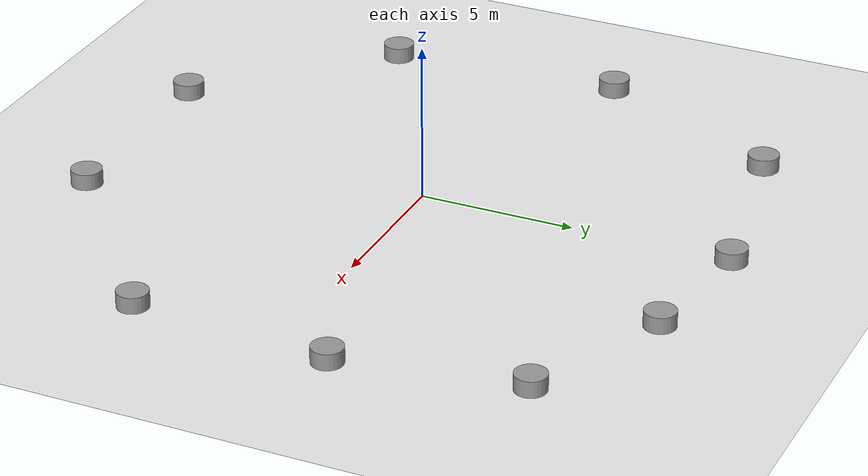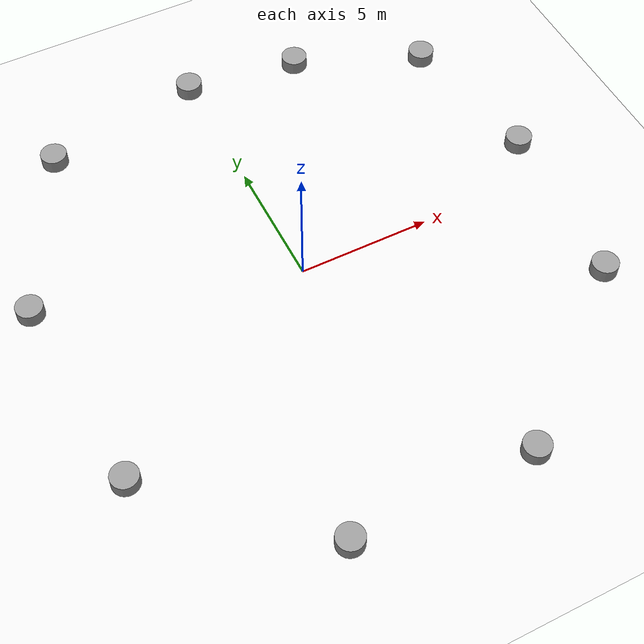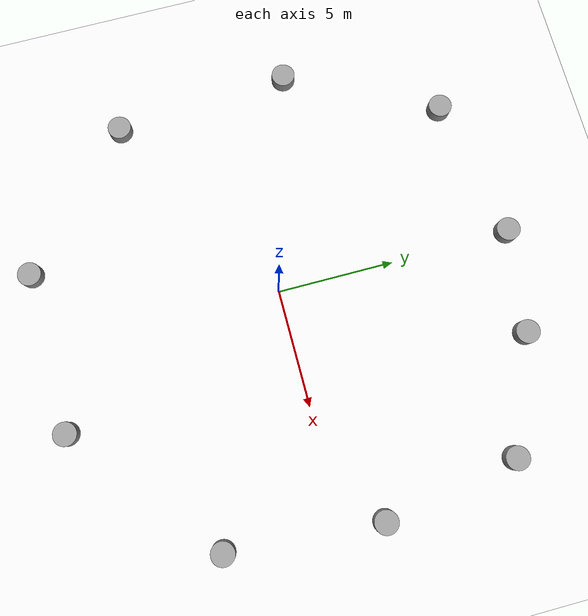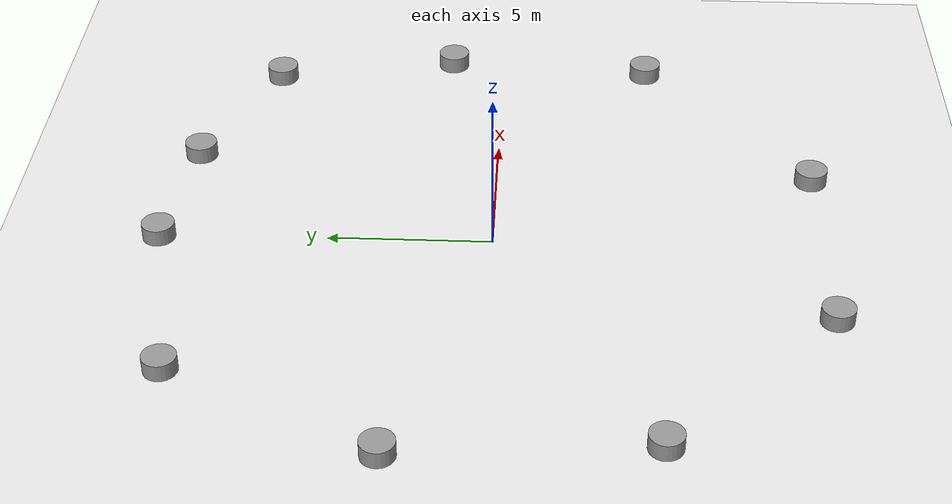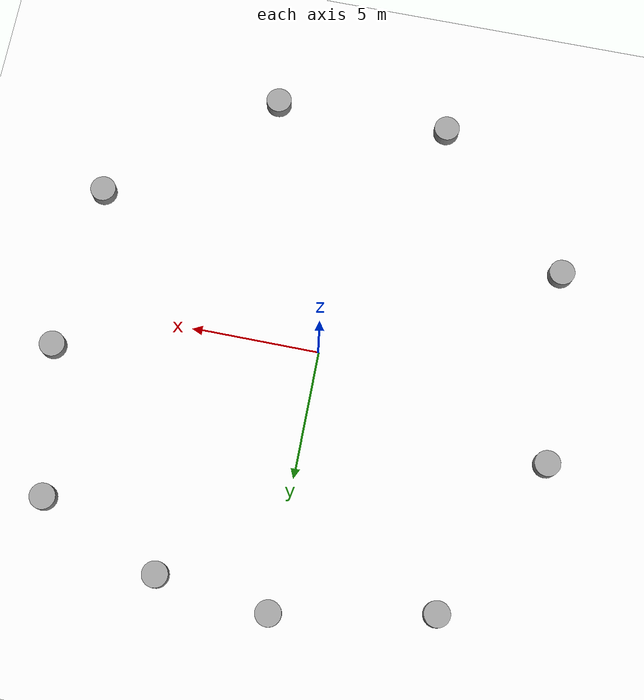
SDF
<sdf version="1.7">
 <world name="default">
  <light name="sun" type="directional">
   <pose>0 0 10 0 -0 0</pose>
   <diffuse>0.8 0.8 0.8 1</diffuse>
   <specular>0.2 0.2 0.2 1</specular>
   <attenuation>
    <range>1000</range>
    <constant>0.9</constant>
    <linear>0.01</linear>
    <quadratic>0.001</quadratic>
   </attenuation>
   <direction>-0.5 0.1 -0.9</direction>
   <spot><inner_angle>0</inner_angle><outer_angle>0</outer_angle><falloff>0</falloff></spot>
  </light>
  <model name="ground_plane">
   <static>1</static>
   <link name="link">
    <collision name="collision">
     <geometry><plane><normal>0 0 1</normal><size>100 100</size></plane></geometry>
     <surface><friction><ode><mu>100</mu><mu2>50</mu2></ode></friction></surface>
    </collision>
    <visual name="visual">
     <cast_shadows>0</cast_shadows>
     <geometry><plane><normal>0 0 1</normal><size>100 100</size></plane></geometry>
     <material>
      <script><uri>file://media/materials/scripts/gazebo.material</uri><name>Gazebo/White</name></script>
     </material>
    </visual>
   </link>
  </model>
  <gravity>0 0 -9.8</gravity>
  <magnetic_field>6e-06 2.3e-05 -4.2e-05</magnetic_field>
  <atmosphere type="adiabatic"/>
  <physics type="ode">
   <max_step_size>0.001</max_step_size>
   <real_time_factor>1</real_time_factor>
   <real_time_update_rate>1000</real_time_update_rate>
  </physics>
  <scene><ambient>0.4 0.4 0.4 1</ambient><background>0.7 0.7 0.7 1</background><shadows>1</shadows></scene>
  <spherical_coordinates>
   <surface_model>EARTH_WGS84</surface_model>
   <latitude_deg>0</latitude_deg>
   <longitude_deg>0</longitude_deg>
   <elevation>0</elevation>
   <heading_deg>0</heading_deg>
  </spherical_coordinates>
  <model name="model2.10">
   <link name="link_12">
    <inertial>
     <mass>1</mass>
     <inertia><ixx>0.145833</ixx><ixy>0</ixy><ixz>0</ixz><iyy>0.145833</iyy><iyz>0</iyz><izz>0.125</izz></inertia>
    </inertial>
    <pose>-3e-06 1e-06 0 0 -0 0</pose>
    <visual name="visual">
     <geometry><cylinder><radius>0.5</radius><length>1</length></cylinder></geometry>
     <material>
      <lighting>1</lighting>
      <script><uri>file://media/materials/scripts/gazebo.material</uri><name>Gazebo/Grey</name></script>
      <shader type="pixel"/>
     </material>
    </visual>
    <collision name="collision">
     <geometry><cylinder><radius>0.5</radius><length>1</length></cylinder></geometry>
     <surface>
      <friction>
       <ode><mu>1</mu><mu2>1</mu2><fdir1>0 0 0</fdir1><slip1>0</slip1><slip2>0</slip2></ode>
       <torsional>
        <coefficient>1</coefficient>
        <patch_radius>0</patch_radius>
        <surface_radius>0</surface_radius>
        <use_patch_radius>1</use_patch_radius>
        <ode><slip>0</slip></ode>
       </torsional>
      </friction>
      <bounce><restitution_coefficient>0</restitution_coefficient><threshold>1e+06</threshold></bounce>
      <contact>
       <collide_without_contact>0</collide_without_contact>
       <collide_without_contact_bitmask>1</collide_without_contact_bitmask>
       <collide_bitmask>1</collide_bitmask>
       <ode>
        <soft_cfm>0</soft_cfm>
        <soft_erp>0.2</soft_erp>
        <kp>1e+13</kp>
        <kd>1</kd>
        <max_vel>0.01</max_vel>
        <min_depth>0</min_depth>
       </ode>
       <bullet>
        <split_impulse>1</split_impulse>
        <split_impulse_penetration_threshold>-0.01</split_impulse_penetration_threshold>
        <soft_cfm>0</soft_cfm>
        <soft_erp>0.2</soft_erp>
        <kp>1e+13</kp>
        <kd>1</kd>
       </bullet>
      </contact>
     </surface>
    </collision>
   </link>
   <static>0</static>
   <pose>-0.069303 10.0831 0 0 -0 0</pose>
  </model>
  <model name="model2.1">
   <link name="link_0">
    <inertial>
     <mass>1</mass>
     <inertia><ixx>0.145833</ixx><ixy>0</ixy><ixz>0</ixz><iyy>0.145833</iyy><iyz>0</iyz><izz>0.125</izz></inertia>
    </inertial>
    <visual name="visual">
     <geometry><cylinder><radius>0.5</radius><length>1</length></cylinder></geometry>
     <material>
      <lighting>1</lighting>
      <script><uri>file://media/materials/scripts/gazebo.material</uri><name>Gazebo/Grey</name></script>
      <shader type="pixel"><normal_map>__default__</normal_map></shader>
     </material>
    </visual>
    <collision name="collision">
     <geometry><cylinder><radius>0.5</radius><length>1</length></cylinder></geometry>
     <surface>
      <friction>
       <ode><mu>1</mu><mu2>1</mu2><fdir1>0 0 0</fdir1><slip1>0</slip1><slip2>0</slip2></ode>
       <torsional>
        <coefficient>1</coefficient>
        <patch_radius>0</patch_radius>
        <surface_radius>0</surface_radius>
        <use_patch_radius>1</use_patch_radius>
        <ode><slip>0</slip></ode>
       </torsional>
      </friction>
      <bounce><restitution_coefficient>0</restitution_coefficient><threshold>1e+06</threshold></bounce>
      <contact>
       <collide_without_contact>0</collide_without_contact>
       <collide_without_contact_bitmask>1</collide_without_contact_bitmask>
       <collide_bitmask>1</collide_bitmask>
       <ode>
        <soft_cfm>0</soft_cfm>
        <soft_erp>0.2</soft_erp>
        <kp>1e+13</kp>
        <kd>1</kd>
        <max_vel>0.01</max_vel>
        <min_depth>0</min_depth>
       </ode>
       <bullet>
        <split_impulse>1</split_impulse>
        <split_impulse_penetration_threshold>-0.01</split_impulse_penetration_threshold>
        <soft_cfm>0</soft_cfm>
        <soft_erp>0.2</soft_erp>
        <kp>1e+13</kp>
        <kd>1</kd>
       </bullet>
      </contact>
     </surface>
    </collision>
   </link>
   <static>0</static>
   <pose>-6.15618 8.91818 0 0 -0 0</pose>
  </model>
  <model name="model2.2">
   <link name="link_1">
    <inertial>
     <mass>1</mass>
     <inertia><ixx>0.145833</ixx><ixy>0</ixy><ixz>0</ixz><iyy>0.145833</iyy><iyz>0</iyz><izz>0.125</izz></inertia>
    </inertial>
    <pose>0 5e-06 0 0 -0 0</pose>
    <visual name="visual">
     <geometry><cylinder><radius>0.5</radius><length>1</length></cylinder></geometry>
     <material>
      <lighting>1</lighting>
      <script><uri>file://media/materials/scripts/gazebo.material</uri><name>Gazebo/Grey</name></script>
      <shader type="pixel"/>
     </material>
    </visual>
    <collision name="collision">
     <geometry><cylinder><radius>0.5</radius><length>1</length></cylinder></geometry>
     <surface>
      <friction>
       <ode><mu>1</mu><mu2>1</mu2><fdir1>0 0 0</fdir1><slip1>0</slip1><slip2>0</slip2></ode>
       <torsional>
        <coefficient>1</coefficient>
        <patch_radius>0</patch_radius>
        <surface_radius>0</surface_radius>
        <use_patch_radius>1</use_patch_radius>
        <ode><slip>0</slip></ode>
       </torsional>
      </friction>
      <bounce><restitution_coefficient>0</restitution_coefficient><threshold>1e+06</threshold></bounce>
      <contact>
       <collide_without_contact>0</collide_without_contact>
       <collide_without_contact_bitmask>1</collide_without_contact_bitmask>
       <collide_bitmask>1</collide_bitmask>
       <ode>
        <soft_cfm>0</soft_cfm>
        <soft_erp>0.2</soft_erp>
        <kp>1e+13</kp>
        <kd>1</kd>
        <max_vel>0.01</max_vel>
        <min_depth>0</min_depth>
       </ode>
       <bullet>
        <split_impulse>1</split_impulse>
        <split_impulse_penetration_threshold>-0.01</split_impulse_penetration_threshold>
        <soft_cfm>0</soft_cfm>
        <soft_erp>0.2</soft_erp>
        <kp>1e+13</kp>
        <kd>1</kd>
       </bullet>
      </contact>
     </surface>
    </collision>
   </link>
   <static>0</static>
   <pose>-9.29105 2.63658 0 0 -0 0</pose>
  </model>
  <model name="model2.4">
   <link name="link_4">
    <inertial>
     <mass>1</mass>
     <inertia><ixx>0.145833</ixx><ixy>0</ixy><ixz>0</ixz><iyy>0.145833</iyy><iyz>0</iyz><izz>0.125</izz></inertia>
    </inertial>
    <pose>-3e-06 0 0 0 -0 0</pose>
    <visual name="visual">
     <geometry><cylinder><radius>0.5</radius><length>1</length></cylinder></geometry>
     <material>
      <lighting>1</lighting>
      <script><uri>file://media/materials/scripts/gazebo.material</uri><name>Gazebo/Grey</name></script>
      <shader type="pixel"/>
     </material>
    </visual>
    <collision name="collision">
     <geometry><cylinder><radius>0.5</radius><length>1</length></cylinder></geometry>
     <surface>
      <friction>
       <ode><mu>1</mu><mu2>1</mu2><fdir1>0 0 0</fdir1><slip1>0</slip1><slip2>0</slip2></ode>
       <torsional>
        <coefficient>1</coefficient>
        <patch_radius>0</patch_radius>
        <surface_radius>0</surface_radius>
        <use_patch_radius>1</use_patch_radius>
        <ode><slip>0</slip></ode>
       </torsional>
      </friction>
      <bounce><restitution_coefficient>0</restitution_coefficient><threshold>1e+06</threshold></bounce>
      <contact>
       <collide_without_contact>0</collide_without_contact>
       <collide_without_contact_bitmask>1</collide_without_contact_bitmask>
       <collide_bitmask>1</collide_bitmask>
       <ode>
        <soft_cfm>0</soft_cfm>
        <soft_erp>0.2</soft_erp>
        <kp>1e+13</kp>
        <kd>1</kd>
        <max_vel>0.01</max_vel>
        <min_depth>0</min_depth>
       </ode>
       <bullet>
        <split_impulse>1</split_impulse>
        <split_impulse_penetration_threshold>-0.01</split_impulse_penetration_threshold>
        <soft_cfm>0</soft_cfm>
        <soft_erp>0.2</soft_erp>
        <kp>1e+13</kp>
        <kd>1</kd>
       </bullet>
      </contact>
     </surface>
    </collision>
   </link>
   <static>0</static>
   <pose>-8.72092 -4.88792 0 0 -0 0</pose>
  </model>
  <model name="model2.3">
   <link name="link_11">
    <inertial>
     <mass>1</mass>
     <inertia><ixx>0.145833</ixx><ixy>0</ixy><ixz>0</ixz><iyy>0.145833</iyy><iyz>0</iyz><izz>0.125</izz></inertia>
    </inertial>
    <pose>-3e-06 0 0 0 -0 0</pose>
    <visual name="visual">
     <geometry><cylinder><radius>0.5</radius><length>1</length></cylinder></geometry>
     <material>
      <lighting>1</lighting>
      <script><uri>file://media/materials/scripts/gazebo.material</uri><name>Gazebo/Grey</name></script>
      <shader type="pixel"/>
     </material>
    </visual>
    <collision name="collision">
     <geometry><cylinder><radius>0.5</radius><length>1</length></cylinder></geometry>
     <surface>
      <friction>
       <ode><mu>1</mu><mu2>1</mu2><fdir1>0 0 0</fdir1><slip1>0</slip1><slip2>0</slip2></ode>
       <torsional>
        <coefficient>1</coefficient>
        <patch_radius>0</patch_radius>
        <surface_radius>0</surface_radius>
        <use_patch_radius>1</use_patch_radius>
        <ode><slip>0</slip></ode>
       </torsional>
      </friction>
      <bounce><restitution_coefficient>0</restitution_coefficient><threshold>1e+06</threshold></bounce>
      <contact>
       <collide_without_contact>0</collide_without_contact>
       <collide_without_contact_bitmask>1</collide_without_contact_bitmask>
       <collide_bitmask>1</collide_bitmask>
       <ode>
        <soft_cfm>0</soft_cfm>
        <soft_erp>0.2</soft_erp>
        <kp>1e+13</kp>
        <kd>1</kd>
        <max_vel>0.01</max_vel>
        <min_depth>0</min_depth>
       </ode>
       <bullet>
        <split_impulse>1</split_impulse>
        <split_impulse_penetration_threshold>-0.01</split_impulse_penetration_threshold>
        <soft_cfm>0</soft_cfm>
        <soft_erp>0.2</soft_erp>
        <kp>1e+13</kp>
        <kd>1</kd>
       </bullet>
      </contact>
     </surface>
    </collision>
   </link>
   <static>0</static>
   <pose>-3.30049 -9.94824 0 0 -0 0</pose>
  </model>
  <model name="model2.5">
   <link name="link_5">
    <inertial>
     <mass>1</mass>
     <inertia><ixx>0.145833</ixx><ixy>0</ixy><ixz>0</ixz><iyy>0.145833</iyy><iyz>0</iyz><izz>0.125</izz></inertia>
    </inertial>
    <pose>-0 4e-06 0 0 -0 0</pose>
    <visual name="visual">
     <geometry><cylinder><radius>0.5</radius><length>1</length></cylinder></geometry>
     <material>
      <lighting>1</lighting>
      <script><uri>file://media/materials/scripts/gazebo.material</uri><name>Gazebo/Grey</name></script>
      <shader type="pixel"/>
     </material>
    </visual>
    <collision name="collision">
     <geometry><cylinder><radius>0.5</radius><length>1</length></cylinder></geometry>
     <surface>
      <friction>
       <ode><mu>1</mu><mu2>1</mu2><fdir1>0 0 0</fdir1><slip1>0</slip1><slip2>0</slip2></ode>
       <torsional>
        <coefficient>1</coefficient>
        <patch_radius>0</patch_radius>
        <surface_radius>0</surface_radius>
        <use_patch_radius>1</use_patch_radius>
        <ode><slip>0</slip></ode>
       </torsional>
      </friction>
      <bounce><restitution_coefficient>0</restitution_coefficient><threshold>1e+06</threshold></bounce>
      <contact>
       <collide_without_contact>0</collide_without_contact>
       <collide_without_contact_bitmask>1</collide_without_contact_bitmask>
       <collide_bitmask>1</collide_bitmask>
       <ode>
        <soft_cfm>0</soft_cfm>
        <soft_erp>0.2</soft_erp>
        <kp>1e+13</kp>
        <kd>1</kd>
        <max_vel>0.01</max_vel>
        <min_depth>0</min_depth>
       </ode>
       <bullet>
        <split_impulse>1</split_impulse>
        <split_impulse_penetration_threshold>-0.01</split_impulse_penetration_threshold>
        <soft_cfm>0</soft_cfm>
        <soft_erp>0.2</soft_erp>
        <kp>1e+13</kp>
        <kd>1</kd>
       </bullet>
      </contact>
     </surface>
    </collision>
   </link>
   <static>0</static>
   <pose>3.54549 -9.84256 0 0 -0 0</pose>
  </model>
  <model name="model2.6">
   <link name="link_6">
    <inertial>
     <mass>1</mass>
     <inertia><ixx>0.145833</ixx><ixy>0</ixy><ixz>0</ixz><iyy>0.145833</iyy><iyz>0</iyz><izz>0.125</izz></inertia>
    </inertial>
    <pose>-4e-06 4e-06 0 0 -0 0</pose>
    <visual name="visual">
     <geometry><cylinder><radius>0.5</radius><length>1</length></cylinder></geometry>
     <material>
      <lighting>1</lighting>
      <script><uri>file://media/materials/scripts/gazebo.material</uri><name>Gazebo/Grey</name></script>
      <shader type="pixel"/>
     </material>
    </visual>
    <collision name="collision">
     <geometry><cylinder><radius>0.5</radius><length>1</length></cylinder></geometry>
     <surface>
      <friction>
       <ode><mu>1</mu><mu2>1</mu2><fdir1>0 0 0</fdir1><slip1>0</slip1><slip2>0</slip2></ode>
       <torsional>
        <coefficient>1</coefficient>
        <patch_radius>0</patch_radius>
        <surface_radius>0</surface_radius>
        <use_patch_radius>1</use_patch_radius>
        <ode><slip>0</slip></ode>
       </torsional>
      </friction>
      <bounce><restitution_coefficient>0</restitution_coefficient><threshold>1e+06</threshold></bounce>
      <contact>
       <collide_without_contact>0</collide_without_contact>
       <collide_without_contact_bitmask>1</collide_without_contact_bitmask>
       <collide_bitmask>1</collide_bitmask>
       <ode>
        <soft_cfm>0</soft_cfm>
        <soft_erp>0.2</soft_erp>
        <kp>1e+13</kp>
        <kd>1</kd>
        <max_vel>0.01</max_vel>
        <min_depth>0</min_depth>
       </ode>
       <bullet>
        <split_impulse>1</split_impulse>
        <split_impulse_penetration_threshold>-0.01</split_impulse_penetration_threshold>
        <soft_cfm>0</soft_cfm>
        <soft_erp>0.2</soft_erp>
        <kp>1e+13</kp>
        <kd>1</kd>
       </bullet>
      </contact>
     </surface>
    </collision>
   </link>
   <static>0</static>
   <pose>9.63794 -4.80031 0 0 -0 0</pose>
  </model>
  <model name="model2.7">
   <link name="link_7">
    <inertial>
     <mass>1</mass>
     <inertia><ixx>0.145833</ixx><ixy>0</ixy><ixz>0</ixz><iyy>0.145833</iyy><iyz>0</iyz><izz>0.125</izz></inertia>
    </inertial>
    <pose>4.2e-05 4e-06 0 0 -0 0</pose>
    <visual name="visual">
     <geometry><cylinder><radius>0.5</radius><length>1</length></cylinder></geometry>
     <material>
      <lighting>1</lighting>
      <script><uri>file://media/materials/scripts/gazebo.material</uri><name>Gazebo/Grey</name></script>
      <shader type="pixel"/>
     </material>
    </visual>
    <collision name="collision">
     <geometry><cylinder><radius>0.5</radius><length>1</length></cylinder></geometry>
     <surface>
      <friction>
       <ode><mu>1</mu><mu2>1</mu2><fdir1>0 0 0</fdir1><slip1>0</slip1><slip2>0</slip2></ode>
       <torsional>
        <coefficient>1</coefficient>
        <patch_radius>0</patch_radius>
        <surface_radius>0</surface_radius>
        <use_patch_radius>1</use_patch_radius>
        <ode><slip>0</slip></ode>
       </torsional>
      </friction>
      <bounce><restitution_coefficient>0</restitution_coefficient><threshold>1e+06</threshold></bounce>
      <contact>
       <collide_without_contact>0</collide_without_contact>
       <collide_without_contact_bitmask>1</collide_without_contact_bitmask>
       <collide_bitmask>1</collide_bitmask>
       <ode>
        <soft_cfm>0</soft_cfm>
        <soft_erp>0.2</soft_erp>
        <kp>1e+13</kp>
        <kd>1</kd>
        <max_vel>0.01</max_vel>
        <min_depth>0</min_depth>
       </ode>
       <bullet>
        <split_impulse>1</split_impulse>
        <split_impulse_penetration_threshold>-0.01</split_impulse_penetration_threshold>
        <soft_cfm>0</soft_cfm>
        <soft_erp>0.2</soft_erp>
        <kp>1e+13</kp>
        <kd>1</kd>
       </bullet>
      </contact>
     </surface>
    </collision>
   </link>
   <static>0</static>
   <pose>10.1207 1.72648 0 0 -0 0</pose>
  </model>
  <model name="model2.8">
   <link name="link_8">
    <inertial>
     <mass>1</mass>
     <inertia><ixx>0.145833</ixx><ixy>0</ixy><ixz>0</ixz><iyy>0.145833</iyy><iyz>0</iyz><izz>0.125</izz></inertia>
    </inertial>
    <pose>0 4e-06 0 0 -0 0</pose>
    <visual name="visual">
     <geometry><cylinder><radius>0.5</radius><length>1</length></cylinder></geometry>
     <material>
      <lighting>1</lighting>
      <script><uri>file://media/materials/scripts/gazebo.material</uri><name>Gazebo/Grey</name></script>
      <shader type="pixel"/>
     </material>
    </visual>
    <collision name="collision">
     <geometry><cylinder><radius>0.5</radius><length>1</length></cylinder></geometry>
     <surface>
      <friction>
       <ode><mu>1</mu><mu2>1</mu2><fdir1>0 0 0</fdir1><slip1>0</slip1><slip2>0</slip2></ode>
       <torsional>
        <coefficient>1</coefficient>
        <patch_radius>0</patch_radius>
        <surface_radius>0</surface_radius>
        <use_patch_radius>1</use_patch_radius>
        <ode><slip>0</slip></ode>
       </torsional>
      </friction>
      <bounce><restitution_coefficient>0</restitution_coefficient><threshold>1e+06</threshold></bounce>
      <contact>
       <collide_without_contact>0</collide_without_contact>
       <collide_without_contact_bitmask>1</collide_without_contact_bitmask>
       <collide_bitmask>1</collide_bitmask>
       <ode>
        <soft_cfm>0</soft_cfm>
        <soft_erp>0.2</soft_erp>
        <kp>1e+13</kp>
        <kd>1</kd>
        <max_vel>0.01</max_vel>
        <min_depth>0</min_depth>
       </ode>
       <bullet>
        <split_impulse>1</split_impulse>
        <split_impulse_penetration_threshold>-0.01</split_impulse_penetration_threshold>
        <soft_cfm>0</soft_cfm>
        <soft_erp>0.2</soft_erp>
        <kp>1e+13</kp>
        <kd>1</kd>
       </bullet>
      </contact>
     </surface>
    </collision>
   </link>
   <static>0</static>
   <pose>9.07668 7.50461 0 0 -0 0</pose>
  </model>
  <model name="model2.9">
   <link name="link_9">
    <inertial>
     <mass>1</mass>
     <inertia><ixx>0.145833</ixx><ixy>0</ixy><ixz>0</ixz><iyy>0.145833</iyy><iyz>0</iyz><izz>0.125</izz></inertia>
    </inertial>
    <pose>3e-06 1e-06 0 0 -0 0</pose>
    <visual name="visual">
     <geometry><cylinder><radius>0.5</radius><length>1</length></cylinder></geometry>
     <material>
      <lighting>1</lighting>
      <script><uri>file://media/materials/scripts/gazebo.material</uri><name>Gazebo/Grey</name></script>
      <shader type="pixel"/>
     </material>
    </visual>
    <collision name="collision">
     <geometry><cylinder><radius>0.5</radius><length>1</length></cylinder></geometry>
     <surface>
      <friction>
       <ode><mu>1</mu><mu2>1</mu2><fdir1>0 0 0</fdir1><slip1>0</slip1><slip2>0</slip2></ode>
       <torsional>
        <coefficient>1</coefficient>
        <patch_radius>0</patch_radius>
        <surface_radius>0</surface_radius>
        <use_patch_radius>1</use_patch_radius>
        <ode><slip>0</slip></ode>
       </torsional>
      </friction>
      <bounce><restitution_coefficient>0</restitution_coefficient><threshold>1e+06</threshold></bounce>
      <contact>
       <collide_without_contact>0</collide_without_contact>
       <collide_without_contact_bitmask>1</collide_without_contact_bitmask>
       <collide_bitmask>1</collide_bitmask>
       <ode>
        <soft_cfm>0</soft_cfm>
        <soft_erp>0.2</soft_erp>
        <kp>1e+13</kp>
        <kd>1</kd>
        <max_vel>0.01</max_vel>
        <min_depth>0</min_depth>
       </ode>
       <bullet>
        <split_impulse>1</split_impulse>
        <split_impulse_penetration_threshold>-0.01</split_impulse_penetration_threshold>
        <soft_cfm>0</soft_cfm>
        <soft_erp>0.2</soft_erp>
        <kp>1e+13</kp>
        <kd>1</kd>
       </bullet>
      </contact>
     </surface>
    </collision>
   </link>
   <static>0</static>
   <pose>4.3121 9.50766 0 0 -0 0</pose>
  </model>
 </world>
</sdf>
